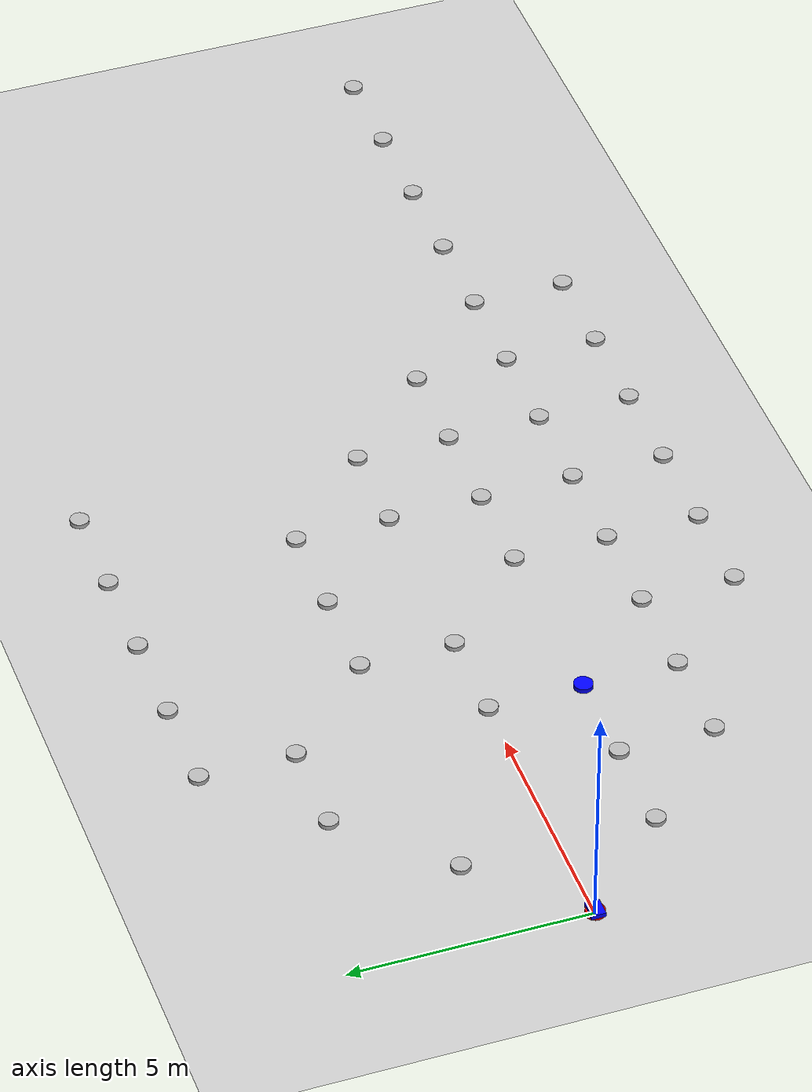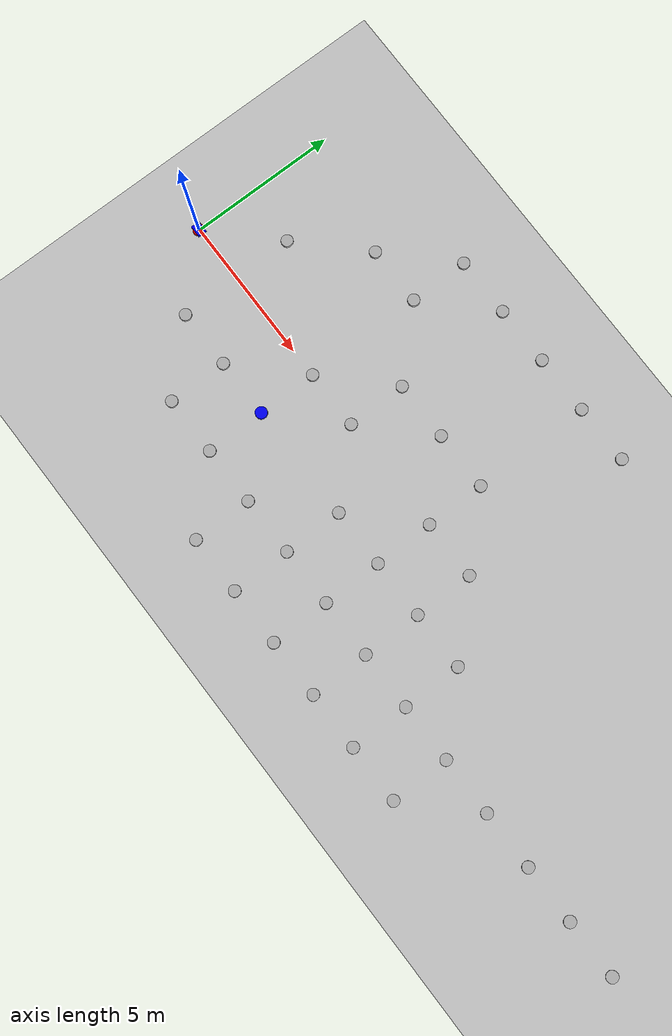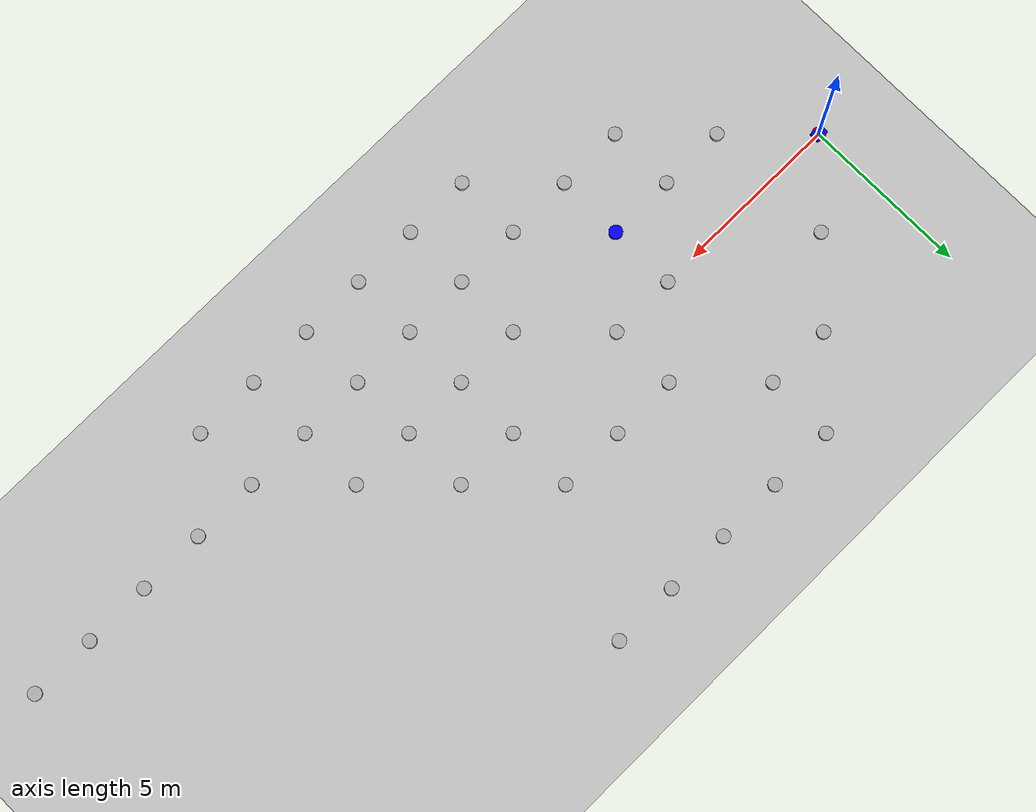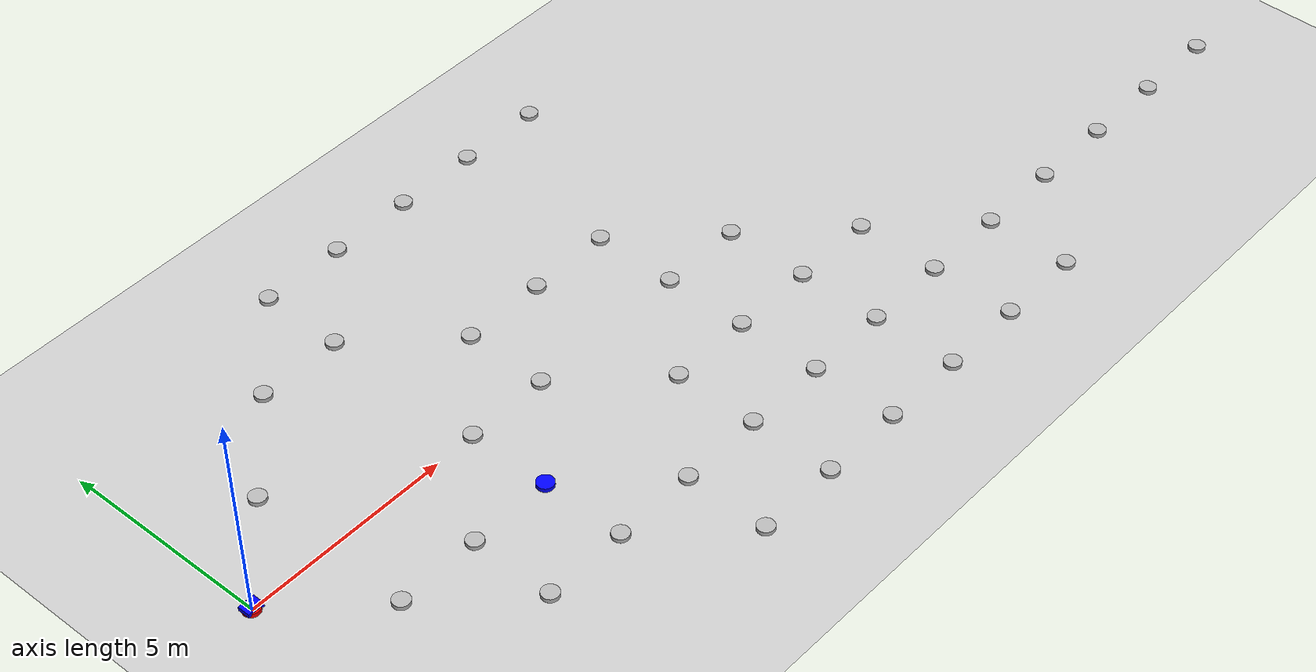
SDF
<?xml version="1.0" ?>
<sdf version="1.9">
  <world name="ethiopia_search">
    <physics name="1ms" type="ignored">
      <max_step_size>0.001</max_step_size>
      <real_time_factor>1.0</real_time_factor>
    </physics>
    <include><uri>https://fuel.gazebosim.org/1.0/OpenRobotics/models/Ground Plane</uri></include>
    <include><uri>https://fuel.gazebosim.org/1.0/OpenRobotics/models/Sun</uri></include>

    <!-- Cities -->
    <model name="Gambella">
      <static>true</static><pose>0 0 0.05 0 0 0</pose>
      <link name="link"><visual name="v"><geometry><cylinder><radius>0.2</radius><length>0.1</length></cylinder></geometry><material><ambient>1 0 0 1</ambient><diffuse>1 0 0 1</diffuse></material></visual></link>
    </model>
    <model name="Dembi_Dollo">
      <static>true</static><pose>2 -2 0.05 0 0 0</pose>
      <link name="link"><visual name="v"><geometry><cylinder><radius>0.2</radius><length>0.1</length></cylinder></geometry></visual></link>
    </model>
    <model name="Gimbi">
      <static>true</static><pose>4 -2 0.05 0 0 0</pose>
      <link name="link"><visual name="v"><geometry><cylinder><radius>0.2</radius><length>0.1</length></cylinder></geometry></visual></link>
    </model>
    <model name="Nekemete">
      <static>true</static><pose>6 0 0.05 0 0 0</pose>
      <link name="link"><visual name="v"><geometry><cylinder><radius>0.2</radius><length>0.1</length></cylinder></geometry></visual></link>
    </model>
    <model name="Gore">
      <static>true</static><pose>2 2 0.05 0 0 0</pose>
      <link name="link"><visual name="v"><geometry><cylinder><radius>0.2</radius><length>0.1</length></cylinder></geometry></visual></link>
    </model>
    <model name="Tepi">
      <static>true</static><pose>4 4 0.05 0 0 0</pose>
      <link name="link"><visual name="v"><geometry><cylinder><radius>0.2</radius><length>0.1</length></cylinder></geometry></visual></link>
    </model>
    <model name="Mezan_Teferi">
      <static>true</static><pose>6 4 0.05 0 0 0</pose>
      <link name="link"><visual name="v"><geometry><cylinder><radius>0.2</radius><length>0.1</length></cylinder></geometry></visual></link>
    </model>
    <model name="Bonga">
      <static>true</static><pose>6 6 0.05 0 0 0</pose>
      <link name="link"><visual name="v"><geometry><cylinder><radius>0.2</radius><length>0.1</length></cylinder></geometry></visual></link>
    </model>
    <model name="Jimma">
      <static>true</static><pose>8 6 0.05 0 0 0</pose>
      <link name="link"><visual name="v"><geometry><cylinder><radius>0.2</radius><length>0.1</length></cylinder></geometry></visual></link>
    </model>
    <model name="Bedelle">
      <static>true</static><pose>8 2 0.05 0 0 0</pose>
      <link name="link"><visual name="v"><geometry><cylinder><radius>0.2</radius><length>0.1</length></cylinder></geometry></visual></link>
    </model>
    <model name="Dawro">
      <static>true</static><pose>10 6 0.05 0 0 0</pose>
      <link name="link"><visual name="v"><geometry><cylinder><radius>0.2</radius><length>0.1</length></cylinder></geometry></visual></link>
    </model>
    <model name="Wolaita_Sodo">
      <static>true</static><pose>12 6 0.05 0 0 0</pose>
      <link name="link"><visual name="v"><geometry><cylinder><radius>0.2</radius><length>0.1</length></cylinder></geometry></visual></link>
    </model>
    <model name="Arba_Minch">
      <static>true</static><pose>14 6 0.05 0 0 0</pose>
      <link name="link"><visual name="v"><geometry><cylinder><radius>0.2</radius><length>0.1</length></cylinder></geometry></visual></link>
    </model>
    <model name="Wolkite">
      <static>true</static><pose>10 2 0.05 0 0 0</pose>
      <link name="link"><visual name="v"><geometry><cylinder><radius>0.2</radius><length>0.1</length></cylinder></geometry></visual></link>
    </model>
    <model name="Worabe">
      <static>true</static><pose>12 2 0.05 0 0 0</pose>
      <link name="link"><visual name="v"><geometry><cylinder><radius>0.2</radius><length>0.1</length></cylinder></geometry></visual></link>
    </model>
    <model name="Hossana">
      <static>true</static><pose>12 0 0.05 0 0 0</pose>
      <link name="link"><visual name="v"><geometry><cylinder><radius>0.2</radius><length>0.1</length></cylinder></geometry></visual></link>
    </model>
    <model name="Buta_Jirra">
      <static>true</static><pose>14 0 0.05 0 0 0</pose>
      <link name="link"><visual name="v"><geometry><cylinder><radius>0.2</radius><length>0.1</length></cylinder></geometry></visual></link>
    </model>
    <model name="Ambo">
      <static>true</static><pose>8 0 0.05 0 0 0</pose>
      <link name="link"><visual name="v"><geometry><cylinder><radius>0.2</radius><length>0.1</length></cylinder></geometry></visual></link>
    </model>
    <model name="Addis_Ababa">
      <static>true</static><pose>6 -2 0.05 0 0 0</pose>
      <link name="link"><visual name="v"><geometry><cylinder><radius>0.2</radius><length>0.1</length></cylinder></geometry><material><ambient>0 0 1 1</ambient><diffuse>0 0 1 1</diffuse></material></visual></link>
    </model>
    <model name="Debre_Birhan">
      <static>true</static><pose>4 -4 0.05 0 0 0</pose>
      <link name="link"><visual name="v"><geometry><cylinder><radius>0.2</radius><length>0.1</length></cylinder></geometry></visual></link>
    </model>
    <model name="Adama">
      <static>true</static><pose>6 -4 0.05 0 0 0</pose>
      <link name="link"><visual name="v"><geometry><cylinder><radius>0.2</radius><length>0.1</length></cylinder></geometry></visual></link>
    </model>
    <model name="Matahara">
      <static>true</static><pose>8 -4 0.05 0 0 0</pose>
      <link name="link"><visual name="v"><geometry><cylinder><radius>0.2</radius><length>0.1</length></cylinder></geometry></visual></link>
    </model>
    <model name="Awash">
      <static>true</static><pose>10 -4 0.05 0 0 0</pose>
      <link name="link"><visual name="v"><geometry><cylinder><radius>0.2</radius><length>0.1</length></cylinder></geometry></visual></link>
    </model>
    <model name="Chiro">
      <static>true</static><pose>12 -4 0.05 0 0 0</pose>
      <link name="link"><visual name="v"><geometry><cylinder><radius>0.2</radius><length>0.1</length></cylinder></geometry></visual></link>
    </model>
    <model name="Dire_Dawa">
      <static>true</static><pose>14 -4 0.05 0 0 0</pose>
      <link name="link"><visual name="v"><geometry><cylinder><radius>0.2</radius><length>0.1</length></cylinder></geometry></visual></link>
    </model>
    <model name="Harar">
      <static>true</static><pose>16 -4 0.05 0 0 0</pose>
      <link name="link"><visual name="v"><geometry><cylinder><radius>0.2</radius><length>0.1</length></cylinder></geometry></visual></link>
    </model>
    <model name="Babile">
      <static>true</static><pose>18 -4 0.05 0 0 0</pose>
      <link name="link"><visual name="v"><geometry><cylinder><radius>0.2</radius><length>0.1</length></cylinder></geometry></visual></link>
    </model>
    <model name="Jigjiga">
      <static>true</static><pose>20 -4 0.05 0 0 0</pose>
      <link name="link"><visual name="v"><geometry><cylinder><radius>0.2</radius><length>0.1</length></cylinder></geometry></visual></link>
    </model>
    <model name="Dega_Habur">
      <static>true</static><pose>22 -4 0.05 0 0 0</pose>
      <link name="link"><visual name="v"><geometry><cylinder><radius>0.2</radius><length>0.1</length></cylinder></geometry></visual></link>
    </model>
    <model name="Kebri_Dehar">
      <static>true</static><pose>24 -4 0.05 0 0 0</pose>
      <link name="link"><visual name="v"><geometry><cylinder><radius>0.2</radius><length>0.1</length></cylinder></geometry></visual></link>
    </model>
    <model name="Gode">
      <static>true</static><pose>26 -4 0.05 0 0 0</pose>
      <link name="link"><visual name="v"><geometry><cylinder><radius>0.2</radius><length>0.1</length></cylinder></geometry></visual></link>
    </model>
    <model name="Batu">
      <static>true</static><pose>10 -2 0.05 0 0 0</pose>
      <link name="link"><visual name="v"><geometry><cylinder><radius>0.2</radius><length>0.1</length></cylinder></geometry></visual></link>
    </model>
    <model name="Shashemene">
      <static>true</static><pose>12 -2 0.05 0 0 0</pose>
      <link name="link"><visual name="v"><geometry><cylinder><radius>0.2</radius><length>0.1</length></cylinder></geometry></visual></link>
    </model>
    <model name="Hawassa">
      <static>true</static><pose>14 -2 0.05 0 0 0</pose>
      <link name="link"><visual name="v"><geometry><cylinder><radius>0.2</radius><length>0.1</length></cylinder></geometry></visual></link>
    </model>
    <model name="Dilla">
      <static>true</static><pose>16 -2 0.05 0 0 0</pose>
      <link name="link"><visual name="v"><geometry><cylinder><radius>0.2</radius><length>0.1</length></cylinder></geometry></visual></link>
    </model>
    <model name="Assella">
      <static>true</static><pose>8 -6 0.05 0 0 0</pose>
      <link name="link"><visual name="v"><geometry><cylinder><radius>0.2</radius><length>0.1</length></cylinder></geometry></visual></link>
    </model>
    <model name="Assasa">
      <static>true</static><pose>10 -6 0.05 0 0 0</pose>
      <link name="link"><visual name="v"><geometry><cylinder><radius>0.2</radius><length>0.1</length></cylinder></geometry></visual></link>
    </model>
    <model name="Dodolla">
      <static>true</static><pose>12 -6 0.05 0 0 0</pose>
      <link name="link"><visual name="v"><geometry><cylinder><radius>0.2</radius><length>0.1</length></cylinder></geometry></visual></link>
    </model>
    <model name="Bale">
      <static>true</static><pose>14 -6 0.05 0 0 0</pose>
      <link name="link"><visual name="v"><geometry><cylinder><radius>0.2</radius><length>0.1</length></cylinder></geometry></visual></link>
    </model>
    <model name="Goba">
      <static>true</static><pose>16 -6 0.05 0 0 0</pose>
      <link name="link"><visual name="v"><geometry><cylinder><radius>0.2</radius><length>0.1</length></cylinder></geometry></visual></link>
    </model>
    <model name="Sof_Oumer">
      <static>true</static><pose>18 -6 0.05 0 0 0</pose>
      <link name="link"><visual name="v"><geometry><cylinder><radius>0.2</radius><length>0.1</length></cylinder></geometry></visual></link>
    </model>

    <!-- Mobile robot model controlled via Gazebo Sim DiffDrive system plugin.
         It listens on /model/ethiopia_bot/cmd_vel (Twist) and publishes
         odometry on /model/ethiopia_bot/odometry. -->
    <model name="ethiopia_bot">
      <pose>0 0 0.1 0 0 0</pose>

      <!-- Base -->
      <link name="base_link">
        <inertial>
          <mass>5.0</mass>
          <inertia>
            <ixx>0.1</ixx><ixy>0.0</ixy><ixz>0.0</ixz>
            <iyy>0.1</iyy><iyz>0.0</iyz><izz>0.1</izz>
          </inertia>
        </inertial>
        <collision name="collision">
          <geometry>
            <box>
              <size>0.4 0.3 0.1</size>
            </box>
          </geometry>
        </collision>
        <visual name="visual">
          <geometry>
            <box>
              <size>0.4 0.3 0.1</size>
            </box>
          </geometry>
          <material>
            <ambient>0 0 1 1</ambient>
            <diffuse>0 0 1 1</diffuse>
          </material>
        </visual>
      </link>

      <!-- Left wheel -->
      <link name="left_wheel">
        <inertial>
          <mass>2.0</mass>
          <inertia>
            <ixx>0.01</ixx><ixy>0.0</ixy><ixz>0.0</ixz>
            <iyy>0.01</iyy><iyz>0.0</iyz><izz>0.01</izz>
          </inertia>
        </inertial>
        <collision name="collision">
          <geometry>
            <cylinder>
              <radius>0.1</radius>
              <length>0.05</length>
            </cylinder>
          </geometry>
        </collision>
        <visual name="visual">
          <geometry>
            <cylinder>
              <radius>0.1</radius>
              <length>0.05</length>
            </cylinder>
          </geometry>
          <material>
            <ambient>0 0 0 1</ambient>
            <diffuse>0 0 0 1</diffuse>
          </material>
        </visual>
      </link>

      <!-- Right wheel -->
      <link name="right_wheel">
        <inertial>
          <mass>2.0</mass>
          <inertia>
            <ixx>0.01</ixx><ixy>0.0</ixy><ixz>0.0</ixz>
            <iyy>0.01</iyy><iyz>0.0</iyz><izz>0.01</izz>
          </inertia>
        </inertial>
        <collision name="collision">
          <geometry>
            <cylinder>
              <radius>0.1</radius>
              <length>0.05</length>
            </cylinder>
          </geometry>
        </collision>
        <visual name="visual">
          <geometry>
            <cylinder>
              <radius>0.1</radius>
              <length>0.05</length>
            </cylinder>
          </geometry>
          <material>
            <ambient>0 0 0 1</ambient>
            <diffuse>0 0 0 1</diffuse>
          </material>
        </visual>
      </link>

      <!-- Joints -->
      <joint name="left_wheel_joint" type="revolute">
        <parent>base_link</parent>
        <child>left_wheel</child>
        <pose>0.1 0.175 -0.05 -1.5707 0 0</pose>
        <axis>
          <xyz>0 0 1</xyz>
          <limit>
            <lower>-1e16</lower>
            <upper>1e16</upper>
          </limit>
        </axis>
      </joint>

      <joint name="right_wheel_joint" type="revolute">
        <parent>base_link</parent>
        <child>right_wheel</child>
        <pose>0.1 -0.175 -0.05 -1.5707 0 0</pose>
        <axis>
          <xyz>0 0 1</xyz>
          <limit>
            <lower>-1e16</lower>
            <upper>1e16</upper>
          </limit>
        </axis>
      </joint>

      <!-- Differential drive controller using Gazebo Sim system plugin -->
      <plugin filename="gz-sim-diff-drive-system" name="gz::sim::systems::DiffDrive">
        <left_joint>left_wheel_joint</left_joint>
        <right_joint>right_wheel_joint</right_joint>
        <wheel_separation>0.35</wheel_separation>
        <wheel_radius>0.1</wheel_radius>
        <odom_publish_frequency>50</odom_publish_frequency>
        <topic>cmd_vel</topic>
      </plugin>
    </model>
  </world>
</sdf>
